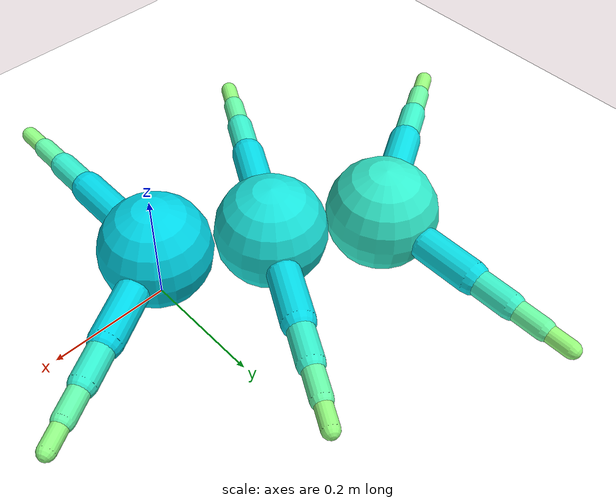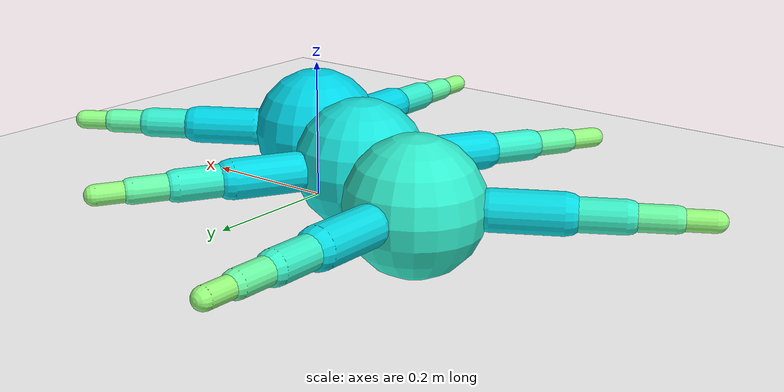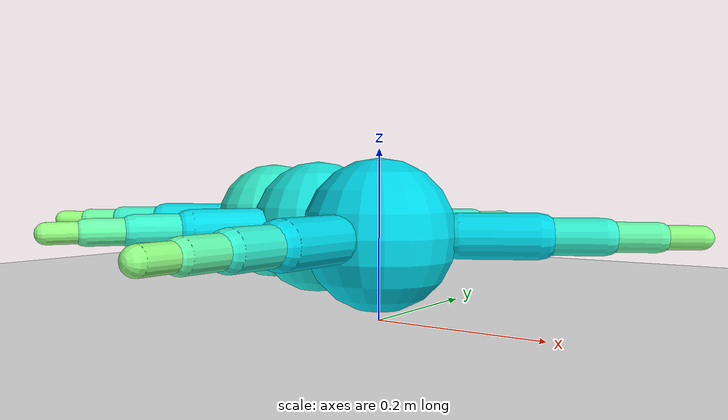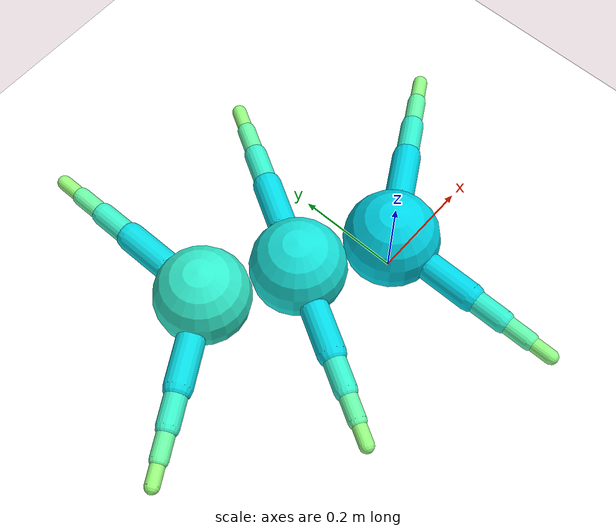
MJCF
<?xml version="1.0" ?>
<mujoco model="test">
	<visual>
		<map force="0.1" zfar="30"/>
		<rgba haze="0.15 0.25 0.35 1"/>
		<global offwidth="2560" offheight="1440" elevation="-20" azimuth="120"/>
	</visual>
	<statistic center="0 0 0.7"/>
	<default>
		<default class="body">
			<geom type="capsule" condim="1" friction=".7" solimp=".9 .99 .003" solref=".015 1"/>
			<joint type="hinge" damping=".2" stiffness="1" armature=".01" limited="true" solimplimit="0 .99 .01"/>
			<default class="body_main">
				<geom type="sphere" size="0.09" rgba="0 .84 .91 1"/>
			</default>
		</default>
	</default>
	<worldbody>
		<light diffuse=".5 .5 .5" pos="0 0 10" dir="0 0 -1"/>
		<geom type="plane" size="40 40 0.1" rgba="1 1 1 1"/>
		<body name="body_main" pos="0 0 .1" childclass="body">
			<site name="body"/>
			<freejoint name="root"/>
			<geom name="body_main" class="body_main"/>
			<body name="Leg 0-0-0">
				<geom pos="1.653273178848927e-17 -0.135 0" size="0.027 0.045" euler="90 -180.0 0" rgba="0.0 0.8414709848078965 0.9092974268256817 1"/>
				<joint name="LJ0-0-0" range="0 25.0" axis="1.0 1.2246467991473532e-16 0" pos="1.1021821192326179e-17 -0.09 0" springref="25.0"/>
				<body name="Leg 0-0-1">
					<geom pos="2.645237086158283e-17 -0.216 0" size="0.021599999999999998 0.036" euler="90 -180.0 0" rgba="0.19866933079506122 0.9320390859672263 0.8084964038195901 1"/>
					<joint name="LJ0-0-1" range="0 25.0" axis="1.0 1.2246467991473532e-16 0" pos="2.2043642384652358e-17 -0.18 0" springref="25.0" stiffness="15"/>
					<body name="Leg 0-0-2">
						<geom pos="3.438808212005767e-17 -0.28079999999999994 0" size="0.01728 0.0288" euler="90 -180.0 0" rgba="0.3894183423086505 0.9854497299884601 0.675463180551151 1"/>
						<joint name="LJ0-0-2" range="0 25.0" axis="1.0 1.2246467991473532e-16 0" pos="3.08610993385133e-17 -0.252 0" springref="25.0" stiffness="15"/>
						<body name="Leg 0-0-3">
							<geom pos="4.0736651126837547e-17 -0.33263999999999994 0" size="0.013824000000000001 0.02304" euler="90 -180.0 0" rgba="0.5646424733950354 0.9995736030415051 0.5155013718214642 1"/>
							<joint name="LJ0-0-3" range="0 25.0" axis="1.0 1.2246467991473532e-16 0" pos="3.7915064901602054e-17 -0.3096 0" springref="25.0" stiffness="15"/>
						</body>
					</body>
				</body>
			</body>
			<body name="Leg 0-1-0">
				<geom pos="0.11691342951089925 0.06749999999999996 0" size="0.027 0.045" euler="90 -420.0 0" rgba="0.0 0.8414709848078965 0.9092974268256817 1"/>
				<joint name="LJ0-1-0" range="0 25.0" axis="-0.4999999999999997 0.8660254037844388 0" pos="0.07794228634059949 0.04499999999999997 0" springref="25.0"/>
				<body name="Leg 0-1-1">
					<geom pos="0.1870614872174388 0.10799999999999994 0" size="0.021599999999999998 0.036" euler="90 -420.0 0" rgba="0.19866933079506122 0.9320390859672263 0.8084964038195901 1"/>
					<joint name="LJ0-1-1" range="0 25.0" axis="-0.4999999999999997 0.8660254037844388 0" pos="0.15588457268119899 0.08999999999999994 0" springref="25.0" stiffness="15"/>
					<body name="Leg 0-1-2">
						<geom pos="0.24317993338267035 0.14039999999999989 0" size="0.01728 0.0288" euler="90 -420.0 0" rgba="0.3894183423086505 0.9854497299884601 0.675463180551151 1"/>
						<joint name="LJ0-1-2" range="0 25.0" axis="-0.4999999999999997 0.8660254037844388 0" pos="0.2182384017536786 0.12599999999999992 0" springref="25.0" stiffness="15"/>
						<body name="Leg 0-1-3">
							<geom pos="0.28807469031485566 0.16631999999999988 0" size="0.013824000000000001 0.02304" euler="90 -420.0 0" rgba="0.5646424733950354 0.9995736030415051 0.5155013718214642 1"/>
							<joint name="LJ0-1-3" range="0 25.0" axis="-0.4999999999999997 0.8660254037844388 0" pos="0.26812146501166223 0.1547999999999999 0" springref="25.0" stiffness="15"/>
						</body>
					</body>
				</body>
			</body>
			<body name="secondaryBody0-0">
				<geom name="secondaryBody0-0" pos="-0.15588457268119893 0.09000000000000001 0" class="body_main" rgba="0.09983341664682815 0.8912073600614354 0.8632093666488737 1"/>
				<joint name="BJ0-0" range="-60 60" pos="0.0 0.0 0"/>
				<body name="Leg 1-0-0">
					<geom pos="-0.22338457268119882 -0.026913429510899284 0" size="0.027 0.045" euler="90 -570.0 0" rgba="0.017999028015746276 0.8510595865292049 0.9016598860500838 1"/>
					<joint name="LJ1-0-0" range="0 25.0" axis="0.8660254037844392 -0.49999999999999917 0" pos="-0.20088457268119886 0.01205771365940049 0" springref="25.0"/>
					<body name="Leg 1-0-1">
						<geom pos="-0.26388457268119875 -0.09706148721743883 0" size="0.021599999999999998 0.036" euler="90 -570.0 0" rgba="0.2162773930243038 0.9384101870865431 0.7977729828417196 1"/>
						<joint name="LJ1-0-1" range="0 25.0" axis="0.8660254037844392 -0.49999999999999917 0" pos="-0.2458845726811988 -0.06588457268119903 0" springref="25.0" stiffness="15"/>
						<body name="Leg 1-0-2">
							<geom pos="-0.2962845726811987 -0.15317993338267044 0" size="0.01728 0.0288" euler="90 -570.0 0" rgba="0.40593346087576293 0.9883493348093304 0.6620813883256834 1"/>
							<joint name="LJ1-0-2" range="0 25.0" axis="0.8660254037844392 -0.49999999999999917 0" pos="-0.2818845726811987 -0.12823840175367868 0" springref="25.0" stiffness="15"/>
							<body name="Leg 1-0-3">
								<geom pos="-0.3222045726811986 -0.19807469031485575 0" size="0.013824000000000001 0.02304" euler="90 -570.0 0" rgba="0.5794062426392174 0.9988861134699528 0.4999946981757423 1"/>
								<joint name="LJ1-0-3" range="0 25.0" axis="0.8660254037844392 -0.49999999999999917 0" pos="-0.31068457268119865 -0.17812146501166232 0" springref="25.0" stiffness="15"/>
							</body>
						</body>
					</body>
				</body>
				<body name="Leg 1-1-0">
					<geom pos="-0.08838457268119905 0.2069134295108993 0" size="0.027 0.045" euler="90 -750.0 0" rgba="0.017999028015746276 0.8510595865292049 0.9016598860500838 1"/>
					<joint name="LJ1-1-0" range="0 25.0" axis="-0.8660254037844392 0.49999999999999906 0" pos="-0.11088457268119901 0.16794228634059954 0" springref="25.0"/>
					<body name="Leg 1-1-1">
						<geom pos="-0.04788457268119914 0.27706148721743884 0" size="0.021599999999999998 0.036" euler="90 -750.0 0" rgba="0.2162773930243038 0.9384101870865431 0.7977729828417196 1"/>
						<joint name="LJ1-1-1" range="0 25.0" axis="-0.8660254037844392 0.49999999999999906 0" pos="-0.0658845726811991 0.24588457268119907 0" springref="25.0" stiffness="15"/>
						<body name="Leg 1-1-2">
							<geom pos="-0.015484572681199238 0.3331799333826705 0" size="0.01728 0.0288" euler="90 -750.0 0" rgba="0.40593346087576293 0.9883493348093304 0.6620813883256834 1"/>
							<joint name="LJ1-1-2" range="0 25.0" axis="-0.8660254037844392 0.49999999999999906 0" pos="-0.02988457268119918 0.30823840175367867 0" springref="25.0" stiffness="15"/>
							<body name="Leg 1-1-3">
								<geom pos="0.010435427318800733 0.3780746903148558 0" size="0.013824000000000001 0.02304" euler="90 -750.0 0" rgba="0.5794062426392174 0.9988861134699528 0.4999946981757423 1"/>
								<joint name="LJ1-1-3" range="0 25.0" axis="-0.8660254037844392 0.49999999999999906 0" pos="-0.0010845726811992418 0.35812146501166237 0" springref="25.0" stiffness="15"/>
							</body>
						</body>
					</body>
				</body>
				<body name="secondaryBody1-0">
					<geom name="secondaryBody1-0" pos="-0.3117691453623979 0.17999999999999997 0" class="body_main" rgba="0.19866933079506122 0.9320390859672263 0.8084964038195901 1"/>
					<joint name="BJ1-0" range="-60 60" pos="-0.15588457268119893 0.09000000000000001 0"/>
					<body name="Leg 2-0-0">
						<geom pos="-0.42868257487329703 0.11249999999999975 0" size="0.027 0.045" euler="90 -960.0 0" rgba="0.03599222450386925 0.8603724523894668 0.893730215359041 1"/>
						<joint name="LJ2-0-0" range="0 25.0" axis="0.5000000000000016 -0.8660254037844377 0" pos="-0.3897114317029973 0.13499999999999984 0" springref="25.0"/>
						<body name="Leg 2-0-1">
							<geom pos="-0.49883063257983645 0.07199999999999963 0" size="0.021599999999999998 0.036" euler="90 -960.0 0" rgba="0.23381538327018064 0.9444772515143676 0.786791090396251 1"/>
							<joint name="LJ2-0-1" range="0 25.0" axis="0.5000000000000016 -0.8660254037844377 0" pos="-0.4676537180435967 0.08999999999999969 0" springref="25.0" stiffness="15"/>
							<body name="Leg 2-0-2">
								<geom pos="-0.5549490787450679 0.03959999999999955 0" size="0.01728 0.0288" euler="90 -960.0 0" rgba="0.4223170605526193 0.990928723091709 0.6484850875222241 1"/>
								<joint name="LJ2-0-2" range="0 25.0" axis="0.5000000000000016 -0.8660254037844377 0" pos="-0.5300075471160762 0.053999999999999576 0" springref="25.0" stiffness="15"/>
								<body name="Leg 2-0-3">
									<geom pos="-0.5998438356772533 0.01367999999999947 0" size="0.013824000000000001 0.02304" euler="90 -960.0 0" rgba="0.5939822893293754 0.9978749935357977 0.48432603062171753 1"/>
									<joint name="LJ2-0-3" range="0 25.0" axis="0.5000000000000016 -0.8660254037844377 0" pos="-0.5798906103740598 0.0251999999999995 0" springref="25.0" stiffness="15"/>
								</body>
							</body>
						</body>
					</body>
					<body name="Leg 2-1-0">
						<geom pos="-0.311769145362398 0.31499999999999995 0" size="0.027 0.045" euler="90 -1080.0 0" rgba="0.03599222450386925 0.8603724523894668 0.893730215359041 1"/>
						<joint name="LJ2-1-0" range="0 25.0" axis="-1.0 -7.347880794884119e-16 0" pos="-0.31176914536239797 0.26999999999999996 0" springref="25.0"/>
						<body name="Leg 2-1-1">
							<geom pos="-0.3117691453623981 0.39599999999999996 0" size="0.021599999999999998 0.036" euler="90 -1080.0 0" rgba="0.23381538327018064 0.9444772515143676 0.786791090396251 1"/>
							<joint name="LJ2-1-1" range="0 25.0" axis="-1.0 -7.347880794884119e-16 0" pos="-0.311769145362398 0.36 0" springref="25.0" stiffness="15"/>
							<body name="Leg 2-1-2">
								<geom pos="-0.31176914536239814 0.4607999999999999 0" size="0.01728 0.0288" euler="90 -1080.0 0" rgba="0.4223170605526193 0.990928723091709 0.6484850875222241 1"/>
								<joint name="LJ2-1-2" range="0 25.0" axis="-1.0 -7.347880794884119e-16 0" pos="-0.3117691453623981 0.43199999999999994 0" springref="25.0" stiffness="15"/>
								<body name="Leg 2-1-3">
									<geom pos="-0.31176914536239814 0.5126399999999999 0" size="0.013824000000000001 0.02304" euler="90 -1080.0 0" rgba="0.5939822893293754 0.9978749935357977 0.48432603062171753 1"/>
									<joint name="LJ2-1-3" range="0 25.0" axis="-1.0 -7.347880794884119e-16 0" pos="-0.31176914536239814 0.4895999999999999 0" springref="25.0" stiffness="15"/>
								</body>
							</body>
						</body>
					</body>
				</body>
			</body>
		</body>
	</worldbody>
	<actuator>
		<motor name="LJ0-0-0" gear="30" joint="LJ0-0-0"/>
		<motor name="LJ0-1-0" gear="30" joint="LJ0-1-0"/>
		<motor name="BJ0-0" gear="30" joint="BJ0-0"/>
		<motor name="LJ1-0-0" gear="30" joint="LJ1-0-0"/>
		<motor name="LJ1-1-0" gear="30" joint="LJ1-1-0"/>
		<motor name="BJ1-0" gear="30" joint="BJ1-0"/>
		<motor name="LJ2-0-0" gear="30" joint="LJ2-0-0"/>
		<motor name="LJ2-1-0" gear="30" joint="LJ2-1-0"/>
	</actuator>
	<sensor>
		<framepos objtype="site" objname="body"/>
		<framequat objtype="site" objname="body"/>
		<jointpos joint="LJ0-0-0"/>
		<jointpos joint="LJ0-1-0"/>
		<jointpos joint="LJ1-0-0"/>
		<jointpos joint="LJ1-1-0"/>
		<jointpos joint="LJ2-0-0"/>
		<jointpos joint="LJ2-1-0"/>
	</sensor>
</mujoco>
